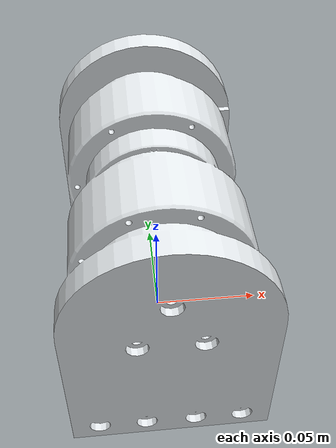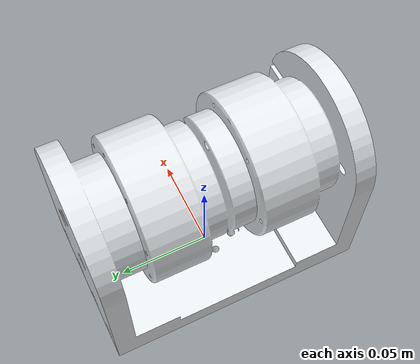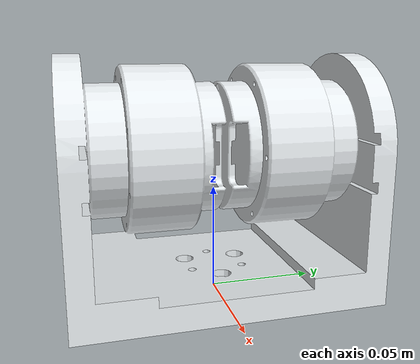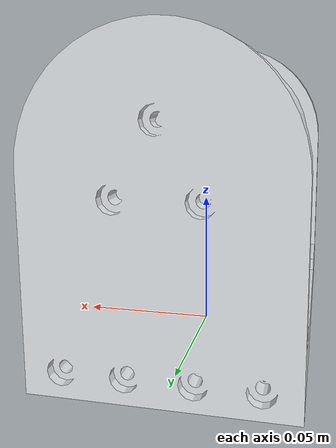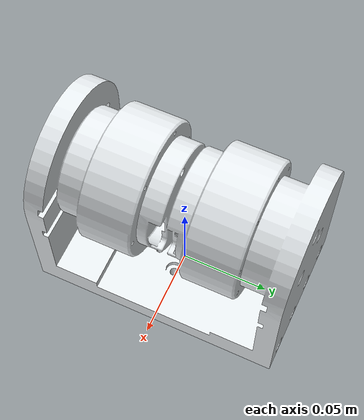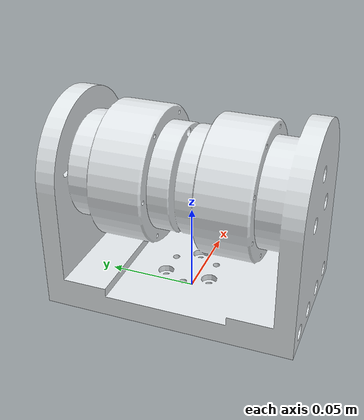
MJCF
<mujoco model="LINK1">
  <default>
    <default class="visual">
      <geom group="2" type="mesh" contype="0" conaffinity="0"/>
    </default>
    <default class="collision">
      <geom group="3" type="mesh"/>
    </default>
  </default>
  <asset>
    <material name="mtl_LINK1" specular="0.20000000000000004" shininess="1.0" rgba="0.89803922 0.91764706 0.92941176 1.0"/>
    <mesh file="LINK1.obj"/>
  </asset>
  <worldbody>
    <body name="LINK1">
      <geom material="mtl_LINK1" mesh="LINK1" class="visual"/>
      <geom mesh="LINK1" class="collision"/>
    </body>
  </worldbody>
</mujoco>
